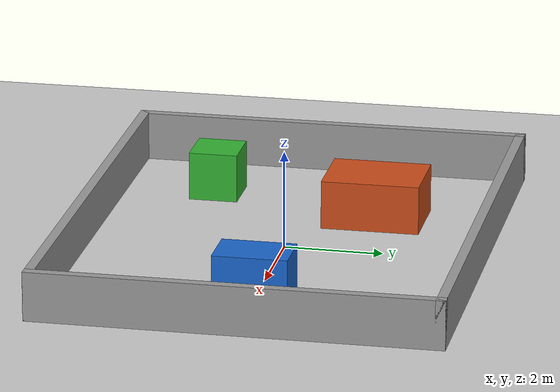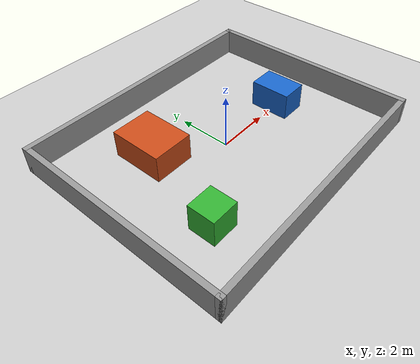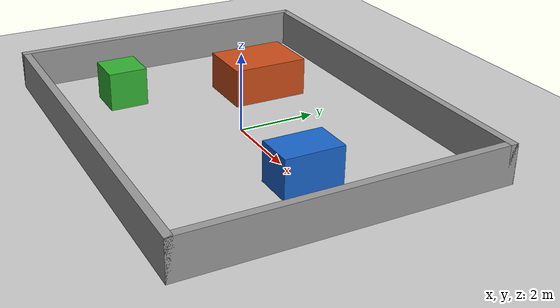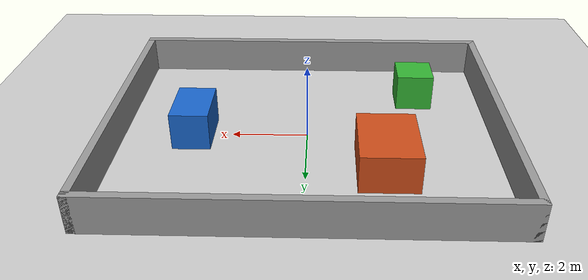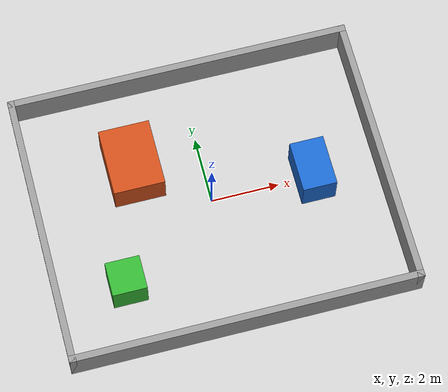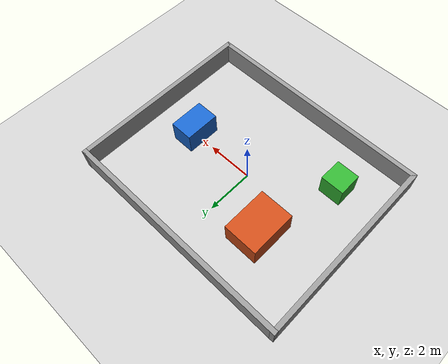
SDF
<?xml version="1.0" ?>
<sdf version="1.8">
  <world name="masonassist_world">
    <physics type="ode">
      <max_step_size>0.001</max_step_size>
      <real_time_factor>1.0</real_time_factor>
    </physics>

    <plugin name="gz::sim::systems::Physics" filename="gz-sim-physics-system"/>
    <plugin name="gz::sim::systems::UserCommands" filename="gz-sim-user-commands-system"/>
    <plugin name="gz::sim::systems::SceneBroadcaster" filename="gz-sim-scene-broadcaster-system"/>
    <plugin name="gz::sim::systems::Contact" filename="gz-sim-contact-system"/>
    <plugin name="gz::sim::systems::Imu" filename="gz-sim-imu-system"/>
    <plugin name="gz::sim::systems::Sensors" filename="gz-sim-sensors-system">
      <render_engine>ogre2</render_engine>
    </plugin>

    <gravity>0 0 -9.8</gravity>

    <model name="ground_plane">
      <static>true</static>
      <link name="link">
        <collision name="collision">
          <geometry><plane><normal>0 0 1</normal><size>14 12</size></plane></geometry>
          <surface><friction><ode><mu>1.0</mu><mu2>1.0</mu2></ode></friction></surface>
        </collision>
        <visual name="visual">
          <geometry><plane><normal>0 0 1</normal><size>14 12</size></plane></geometry>
          <material>
            <ambient>0.8 0.8 0.8 1</ambient>
            <diffuse>0.8 0.8 0.8 1</diffuse>
            <specular>0.8 0.8 0.8 1</specular>
          </material>
        </visual>
      </link>
    </model>

    <model name="room_wall_north">
      <static>true</static>
      <pose>0 4 0.5 0 0 0</pose>
      <link name="link">
        <collision name="collision"><geometry><box><size>10.2 0.2 1.0</size></box></geometry></collision>
        <visual name="visual"><geometry><box><size>10.2 0.2 1.0</size></box></geometry>
          <material><ambient>0.6 0.6 0.6 1</ambient><diffuse>0.6 0.6 0.6 1</diffuse></material></visual>
      </link>
    </model>
    <model name="room_wall_south">
      <static>true</static>
      <pose>0 -4 0.5 0 0 0</pose>
      <link name="link">
        <collision name="collision"><geometry><box><size>10.2 0.2 1.0</size></box></geometry></collision>
        <visual name="visual"><geometry><box><size>10.2 0.2 1.0</size></box></geometry>
          <material><ambient>0.6 0.6 0.6 1</ambient><diffuse>0.6 0.6 0.6 1</diffuse></material></visual>
      </link>
    </model>
    <model name="room_wall_east">
      <static>true</static>
      <pose>5 0 0.5 0 0 0</pose>
      <link name="link">
        <collision name="collision"><geometry><box><size>0.2 8.2 1.0</size></box></geometry></collision>
        <visual name="visual"><geometry><box><size>0.2 8.2 1.0</size></box></geometry>
          <material><ambient>0.6 0.6 0.6 1</ambient><diffuse>0.6 0.6 0.6 1</diffuse></material></visual>
      </link>
    </model>
    <model name="room_wall_west">
      <static>true</static>
      <pose>-5 0 0.5 0 0 0</pose>
      <link name="link">
        <collision name="collision"><geometry><box><size>0.2 8.2 1.0</size></box></geometry></collision>
        <visual name="visual"><geometry><box><size>0.2 8.2 1.0</size></box></geometry>
          <material><ambient>0.6 0.6 0.6 1</ambient><diffuse>0.6 0.6 0.6 1</diffuse></material></visual>
      </link>
    </model>

    <!-- Rectangular block, upper-left quadrant -->
    <model name="room_obstacle_1">
      <static>true</static>
      <pose>-2 1.5 0.5 0 0 0</pose>
      <link name="link">
        <collision name="collision"><geometry><box><size>1.5 2.0 1.0</size></box></geometry></collision>
        <visual name="visual"><geometry><box><size>1.5 2.0 1.0</size></box></geometry>
          <material><ambient>0.8 0.3 0.1 1</ambient><diffuse>0.8 0.3 0.1 1</diffuse></material></visual>
      </link>
    </model>
    <!-- Small block, right-middle -->
    <model name="room_obstacle_2">
      <static>true</static>
      <pose>3 0 0.5 0 0 0</pose>
      <link name="link">
        <collision name="collision"><geometry><box><size>1.0 1.5 1.0</size></box></geometry></collision>
        <visual name="visual"><geometry><box><size>1.0 1.5 1.0</size></box></geometry>
          <material><ambient>0.1 0.4 0.8 1</ambient><diffuse>0.1 0.4 0.8 1</diffuse></material></visual>
      </link>
    </model>
    <!-- Small square block, lower-left -->
    <model name="room_obstacle_3">
      <static>true</static>
      <pose>-3 -2 0.5 0 0 0</pose>
      <link name="link">
        <collision name="collision"><geometry><box><size>1.0 1.0 1.0</size></box></geometry></collision>
        <visual name="visual"><geometry><box><size>1.0 1.0 1.0</size></box></geometry>
          <material><ambient>0.2 0.7 0.2 1</ambient><diffuse>0.2 0.7 0.2 1</diffuse></material></visual>
      </link>
    </model>

    <light type="directional" name="sun">
      <cast_shadows>true</cast_shadows>
      <pose>0 0 10 0 0 0</pose>
      <diffuse>0.8 0.8 0.8 1</diffuse>
      <specular>0.2 0.2 0.2 1</specular>
      <direction>-0.5 0.1 -0.9</direction>
    </light>
  </world>
</sdf>
